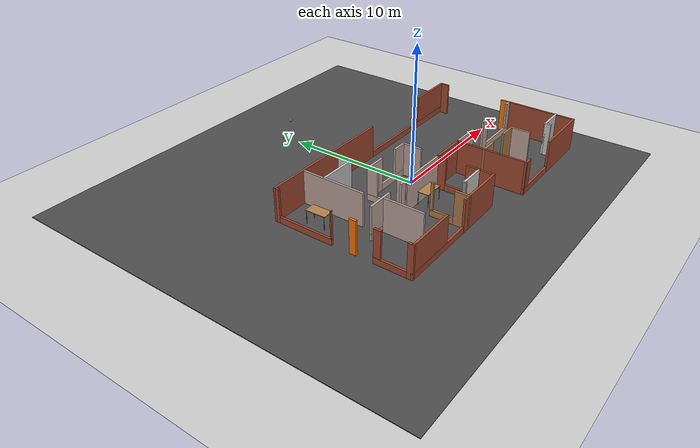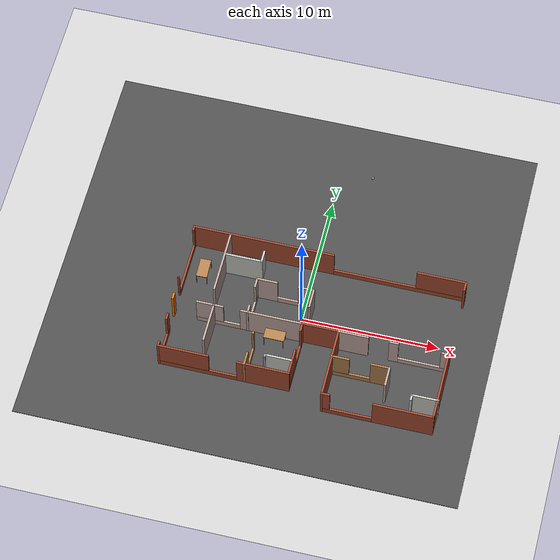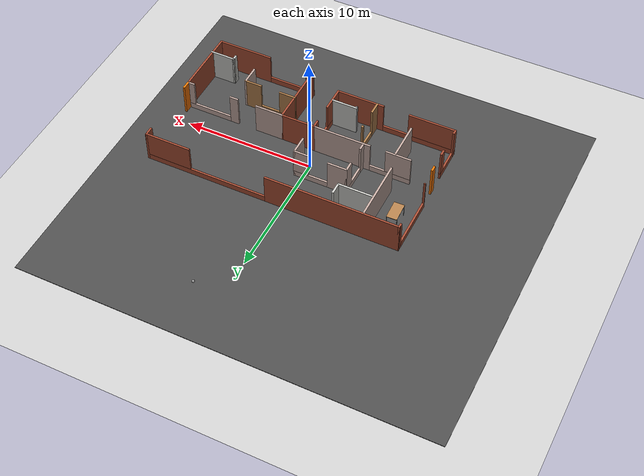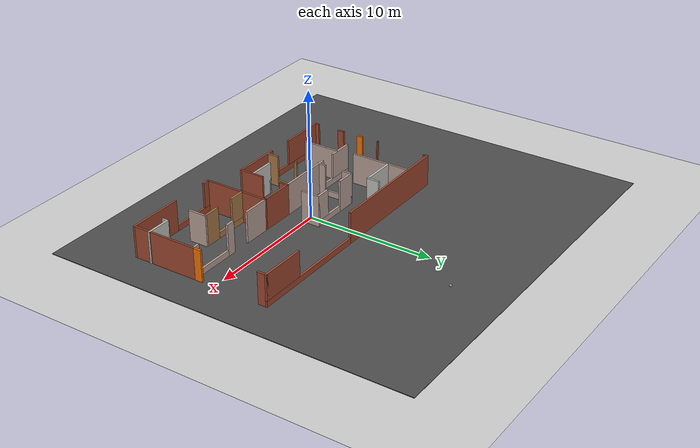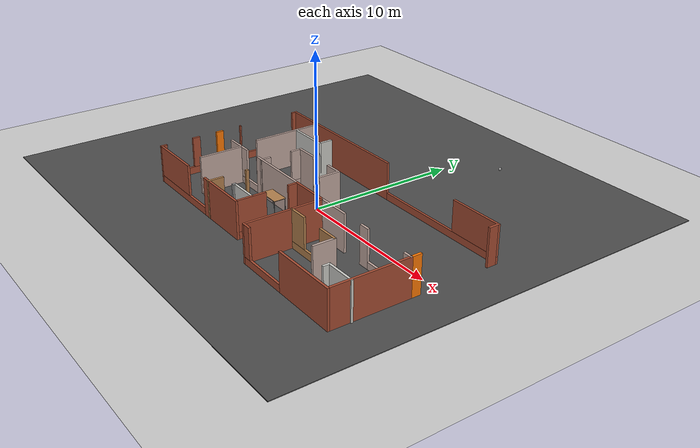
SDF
<sdf version="1.6">
 <world name="default">
  <model name="ground_plane">
   <static>1</static>
   <link name="link">
    <collision name="collision">
     <geometry><plane><normal>0 0 1</normal><size>100 100</size></plane></geometry>
     <surface>
      <contact><collide_bitmask>65535</collide_bitmask></contact>
      <friction><ode><mu>100</mu><mu2>50</mu2></ode></friction>
     </surface>
    </collision>
    <visual name="visual">
     <cast_shadows>0</cast_shadows>
     <geometry><plane><normal>0 0 1</normal><size>100 100</size></plane></geometry>
     <material>
      <script><uri>file://media/materials/scripts/gazebo.material</uri><name>Gazebo/Grey</name></script>
     </material>
    </visual>
   </link>
  </model>
  <model name="bksFloor">
   <pose>1.04636 -1.22829 -0.033581 0 -0 0</pose>
   <link name="Wall_1">
    <pose>-0.029228 5.55 0 0 -0 0</pose>
    <visual name="Wall_1_Visual_0">
     <pose>-4.80896 0 1.25 0 -0 0</pose>
     <geometry><box><size>10.3821 0.15 2.5</size></box></geometry>
     <material>
      <script><uri>file://media/materials/scripts/gazebo.material</uri><name>Gazebo/Bricks</name></script>
      <ambient>1 1 1 1</ambient>
     </material>
     <meta><layer>0</layer></meta>
    </visual>
    <collision name="Wall_1_Collision_0">
     <geometry><box><size>10.3821 0.15 2.5</size></box></geometry>
     <pose>-4.80896 0 1.25 0 -0 0</pose>
    </collision>
    <visual name="Wall_1_Visual_1">
     <pose>5.19104 0 0.25 0 -0 0</pose>
     <geometry><box><size>9.61793 0.15 0.5</size></box></geometry>
     <material>
      <script><uri>file://media/materials/scripts/gazebo.material</uri><name>Gazebo/Bricks</name></script>
      <ambient>1 1 1 1</ambient>
     </material>
     <meta><layer>0</layer></meta>
    </visual>
    <collision name="Wall_1_Collision_1">
     <geometry><box><size>9.61793 0.15 0.5</size></box></geometry>
     <pose>5.19104 0 0.25 0 -0 0</pose>
    </collision>
    <visual name="Wall_1_Visual_2">
     <pose>8.19104 0 1.5 0 -0 0</pose>
     <geometry><box><size>3.61793 0.15 2</size></box></geometry>
     <material>
      <script><uri>file://media/materials/scripts/gazebo.material</uri><name>Gazebo/Bricks</name></script>
      <ambient>1 1 1 1</ambient>
     </material>
     <meta><layer>0</layer></meta>
    </visual>
    <collision name="Wall_1_Collision_2">
     <geometry><box><size>3.61793 0.15 2</size></box></geometry>
     <pose>8.19104 0 1.5 0 -0 0</pose>
    </collision>
   </link>
   <link name="Wall_12">
    <pose>-5.22923 -4.55 0 0 -0 3.14159</pose>
    <visual name="Wall_12_Visual_0">
     <pose>-2.85664 0 1.25 0 -0 0</pose>
     <geometry><box><size>3.78673 0.15 2.5</size></box></geometry>
     <material>
      <script><uri>file://media/materials/scripts/gazebo.material</uri><name>Gazebo/Bricks</name></script>
      <ambient>1 1 1 1</ambient>
     </material>
     <meta><layer>0</layer></meta>
    </visual>
    <collision name="Wall_12_Collision_0">
     <geometry><box><size>3.78673 0.15 2.5</size></box></geometry>
     <pose>-2.85664 0 1.25 0 -0 0</pose>
    </collision>
    <visual name="Wall_12_Visual_1">
     <pose>1.89336 0 0.25 0 -0 0</pose>
     <geometry><box><size>5.71328 0.15 0.5</size></box></geometry>
     <material>
      <script><uri>file://media/materials/scripts/gazebo.material</uri><name>Gazebo/Bricks</name></script>
      <ambient>1 1 1 1</ambient>
     </material>
     <meta><layer>0</layer></meta>
    </visual>
    <collision name="Wall_12_Collision_1">
     <geometry><box><size>5.71328 0.15 0.5</size></box></geometry>
     <pose>1.89336 0 0.25 0 -0 0</pose>
    </collision>
    <visual name="Wall_12_Visual_2">
     <pose>2.89336 0 1.5 0 -0 0</pose>
     <geometry><box><size>3.71327 0.15 2</size></box></geometry>
     <material>
      <script><uri>file://media/materials/scripts/gazebo.material</uri><name>Gazebo/Bricks</name></script>
      <ambient>1 1 1 1</ambient>
     </material>
     <meta><layer>0</layer></meta>
    </visual>
    <collision name="Wall_12_Collision_2">
     <geometry><box><size>3.71327 0.15 2</size></box></geometry>
     <pose>2.89336 0 1.5 0 -0 0</pose>
    </collision>
   </link>
   <link name="Wall_21">
    <pose>4.08581 -2.49345 0 0 -0 3.14159</pose>
    <visual name="Wall_21_Visual_0">
     <pose>-1.4228 0 1.25 0 -0 0</pose>
     <geometry><box><size>1.40439 0.15 2.5</size></box></geometry>
     <material>
      <script><uri>file://media/materials/scripts/gazebo.material</uri><name>Gazebo/Wood</name></script>
      <ambient>1 1 1 1</ambient>
     </material>
     <meta><layer>0</layer></meta>
    </visual>
    <collision name="Wall_21_Collision_0">
     <geometry><box><size>1.40439 0.15 2.5</size></box></geometry>
     <pose>-1.4228 0 1.25 0 -0 0</pose>
    </collision>
    <visual name="Wall_21_Visual_1">
     <pose>0.702197 0 0.25 0 -0 0</pose>
     <geometry><box><size>2.84561 0.15 0.5</size></box></geometry>
     <material>
      <script><uri>file://media/materials/scripts/gazebo.material</uri><name>Gazebo/Wood</name></script>
      <ambient>1 1 1 1</ambient>
     </material>
     <meta><layer>0</layer></meta>
    </visual>
    <collision name="Wall_21_Collision_1">
     <geometry><box><size>2.84561 0.15 0.5</size></box></geometry>
     <pose>0.702197 0 0.25 0 -0 0</pose>
    </collision>
    <visual name="Wall_21_Visual_2">
     <pose>1.4522 0 1.5 0 -0 0</pose>
     <geometry><box><size>1.34561 0.15 2</size></box></geometry>
     <material>
      <script><uri>file://media/materials/scripts/gazebo.material</uri><name>Gazebo/Wood</name></script>
      <ambient>1 1 1 1</ambient>
     </material>
     <meta><layer>0</layer></meta>
    </visual>
    <collision name="Wall_21_Collision_2">
     <geometry><box><size>1.34561 0.15 2</size></box></geometry>
     <pose>1.4522 0 1.5 0 -0 0</pose>
    </collision>
   </link>
   <link name="Wall_24">
    <collision name="Wall_24_Collision">
     <geometry><box><size>2 0.15 2.5</size></box></geometry>
     <pose>0 0 1.25 0 -0 0</pose>
    </collision>
    <visual name="Wall_24_Visual">
     <pose>0 0 1.25 0 -0 0</pose>
     <geometry><box><size>2 0.15 2.5</size></box></geometry>
     <material>
      <script><uri>file://media/materials/scripts/gazebo.material</uri><name>Gazebo/CeilingTiled</name></script>
      <ambient>1 1 1 1</ambient>
     </material>
     <meta><layer>0</layer></meta>
    </visual>
    <pose>9.02923 -4.19025 0 0 -0 0</pose>
   </link>
   <link name="Wall_3">
    <pose>5.97077 -5.55 0 0 -0 3.14159</pose>
    <visual name="Wall_3_Visual_0">
     <pose>-1.828 0 1.25 0 -0 0</pose>
     <geometry><box><size>4.34399 0.15 2.5</size></box></geometry>
     <material>
      <script><uri>file://media/materials/scripts/gazebo.material</uri><name>Gazebo/Bricks</name></script>
      <ambient>1 1 1 1</ambient>
     </material>
     <meta><layer>0</layer></meta>
    </visual>
    <collision name="Wall_3_Collision_0">
     <geometry><box><size>4.34399 0.15 2.5</size></box></geometry>
     <pose>-1.828 0 1.25 0 -0 0</pose>
    </collision>
    <visual name="Wall_3_Visual_1">
     <pose>2.172 0 0.25 0 -0 0</pose>
     <geometry><box><size>3.656 0.15 0.5</size></box></geometry>
     <material>
      <script><uri>file://media/materials/scripts/gazebo.material</uri><name>Gazebo/Bricks</name></script>
      <ambient>1 1 1 1</ambient>
     </material>
     <meta><layer>0</layer></meta>
    </visual>
    <collision name="Wall_3_Collision_1">
     <geometry><box><size>3.656 0.15 0.5</size></box></geometry>
     <pose>2.172 0 0.25 0 -0 0</pose>
    </collision>
    <visual name="Wall_3_Visual_2">
     <pose>3.672 0 1.5 0 -0 0</pose>
     <geometry><box><size>0.656005 0.15 2</size></box></geometry>
     <material>
      <script><uri>file://media/materials/scripts/gazebo.material</uri><name>Gazebo/Bricks</name></script>
      <ambient>1 1 1 1</ambient>
     </material>
     <meta><layer>0</layer></meta>
    </visual>
    <collision name="Wall_3_Collision_2">
     <geometry><box><size>0.656005 0.15 2</size></box></geometry>
     <pose>3.672 0 1.5 0 -0 0</pose>
    </collision>
   </link>
   <link name="Wall_34">
    <collision name="Wall_34_Collision">
     <geometry><box><size>0.75 0.15 2.5</size></box></geometry>
     <pose>0 0 1.25 0 -0 0</pose>
    </collision>
    <visual name="Wall_34_Visual">
     <pose>0 0 1.25 0 -0 0</pose>
     <geometry><box><size>0.75 0.15 2.5</size></box></geometry>
     <material>
      <script><uri>file://media/materials/scripts/gazebo.material</uri><name>Gazebo/Bricks</name></script>
      <ambient>1 1 1 1</ambient>
     </material>
     <meta><layer>0</layer></meta>
    </visual>
    <pose>9.89577 5.25 0 0 0 -1.5708</pose>
   </link>
   <link name="Wall_36">
    <collision name="Wall_36_Collision">
     <geometry><box><size>0.75 0.15 2.5</size></box></geometry>
     <pose>0 0 1.25 0 -0 0</pose>
    </collision>
    <visual name="Wall_36_Visual">
     <pose>0 0 1.25 0 -0 0</pose>
     <geometry><box><size>0.75 0.15 2.5</size></box></geometry>
     <material>
      <script><uri>file://media/materials/scripts/gazebo.material</uri><name>Gazebo/Grey</name></script>
      <ambient>0.996078 0.47451 0.0196078 1</ambient>
     </material>
     <meta><layer>0</layer></meta>
    </visual>
    <pose>9.89577 -0.15 0 0 -0 1.5708</pose>
   </link>
   <link name="Wall_38">
    <collision name="Wall_38_Collision">
     <geometry><box><size>5.25 0.15 2.5</size></box></geometry>
     <pose>0 0 1.25 0 -0 0</pose>
    </collision>
    <visual name="Wall_38_Visual">
     <pose>0 0 1.25 0 -0 0</pose>
     <geometry><box><size>5.25 0.15 2.5</size></box></geometry>
     <material>
      <script><uri>file://media/materials/scripts/gazebo.material</uri><name>Gazebo/Bricks</name></script>
      <ambient>1 1 1 1</ambient>
     </material>
     <meta><layer>0</layer></meta>
    </visual>
    <pose>9.89577 -3 0 0 0 -1.5708</pose>
   </link>
   <link name="Wall_4">
    <collision name="Wall_4_Collision">
     <geometry><box><size>5.25 0.15 2.5</size></box></geometry>
     <pose>0 0 1.25 0 -0 0</pose>
    </collision>
    <visual name="Wall_4_Visual">
     <pose>0 0 1.25 0 -0 0</pose>
     <geometry><box><size>5.25 0.15 2.5</size></box></geometry>
     <material>
      <script><uri>file://media/materials/scripts/gazebo.material</uri><name>Gazebo/Bricks</name></script>
      <ambient>1 1 1 1</ambient>
     </material>
     <meta><layer>0</layer></meta>
    </visual>
    <pose>2.04577 -3 0 0 -0 1.5708</pose>
   </link>
   <link name="Wall_40">
    <collision name="Wall_40_Collision">
     <geometry><box><size>0.5 0.15 2.5</size></box></geometry>
     <pose>0 0 1.25 0 -0 0</pose>
    </collision>
    <visual name="Wall_40_Visual">
     <pose>0 0 1.25 0 -0 0</pose>
     <geometry><box><size>0.5 0.15 2.5</size></box></geometry>
     <material>
      <script><uri>file://media/materials/scripts/gazebo.material</uri><name>Gazebo/CeilingTiled</name></script>
      <ambient>1 1 1 1</ambient>
     </material>
     <meta><layer>0</layer></meta>
    </visual>
    <pose>8.10423 -4.36525 0 0 0 -1.5708</pose>
   </link>
   <link name="Wall_42">
    <collision name="Wall_42_Collision">
     <geometry><box><size>1.5 0.15 2.5</size></box></geometry>
     <pose>0 0 1.25 0 -0 0</pose>
    </collision>
    <visual name="Wall_42_Visual">
     <pose>0 0 1.25 0 -0 0</pose>
     <geometry><box><size>1.5 0.15 2.5</size></box></geometry>
     <material>
      <script><uri>file://media/materials/scripts/gazebo.material</uri><name>Gazebo/Grey</name></script>
      <ambient>0.760784 0.662745 0.627451 1</ambient>
     </material>
     <meta><layer>0</layer></meta>
    </visual>
    <pose>6.13581 -3.16845 0 0 0 -1.5708</pose>
   </link>
   <link name="Wall_44">
    <pose>-9.95423 3.375 0 0 0 -1.5708</pose>
    <visual name="Wall_44_Visual_0">
     <pose>-2.04593 0 1.25 0 -0 0</pose>
     <geometry><box><size>0.408134 0.15 2.5</size></box></geometry>
     <material>
      <script><uri>file://media/materials/scripts/gazebo.material</uri><name>Gazebo/Bricks</name></script>
      <ambient>1 1 1 1</ambient>
     </material>
     <meta><layer>0</layer></meta>
    </visual>
    <collision name="Wall_44_Collision_0">
     <geometry><box><size>0.408134 0.15 2.5</size></box></geometry>
     <pose>-2.04593 0 1.25 0 -0 0</pose>
    </collision>
    <visual name="Wall_44_Visual_1">
     <pose>0.204067 0 0.25 0 -0 0</pose>
     <geometry><box><size>4.09187 0.15 0.5</size></box></geometry>
     <material>
      <script><uri>file://media/materials/scripts/gazebo.material</uri><name>Gazebo/Bricks</name></script>
      <ambient>1 1 1 1</ambient>
     </material>
     <meta><layer>0</layer></meta>
    </visual>
    <collision name="Wall_44_Collision_1">
     <geometry><box><size>4.09187 0.15 0.5</size></box></geometry>
     <pose>0.204067 0 0.25 0 -0 0</pose>
    </collision>
    <visual name="Wall_44_Visual_2">
     <pose>2.20407 0 1.5 0 -0 0</pose>
     <geometry><box><size>0.091866 0.15 2</size></box></geometry>
     <material>
      <script><uri>file://media/materials/scripts/gazebo.material</uri><name>Gazebo/Bricks</name></script>
      <ambient>1 1 1 1</ambient>
     </material>
     <meta><layer>0</layer></meta>
    </visual>
    <collision name="Wall_44_Collision_2">
     <geometry><box><size>0.091866 0.15 2</size></box></geometry>
     <pose>2.20407 0 1.5 0 -0 0</pose>
    </collision>
   </link>
   <link name="Wall_46">
    <pose>-9.90423 -3.25 0 0 -0 1.5708</pose>
    <visual name="Wall_46_Visual_0">
     <pose>-1.1581 0 1.25 0 -0 0</pose>
     <geometry><box><size>0.433795 0.15 2.5</size></box></geometry>
     <material>
      <script><uri>file://media/materials/scripts/gazebo.material</uri><name>Gazebo/Bricks</name></script>
      <ambient>1 1 1 1</ambient>
     </material>
     <meta><layer>0</layer></meta>
    </visual>
    <collision name="Wall_46_Collision_0">
     <geometry><box><size>0.433795 0.15 2.5</size></box></geometry>
     <pose>-1.1581 0 1.25 0 -0 0</pose>
    </collision>
    <visual name="Wall_46_Visual_1">
     <pose>0.216898 0 0.25 0 -0 0</pose>
     <geometry><box><size>2.31621 0.15 0.5</size></box></geometry>
     <material>
      <script><uri>file://media/materials/scripts/gazebo.material</uri><name>Gazebo/Bricks</name></script>
      <ambient>1 1 1 1</ambient>
     </material>
     <meta><layer>0</layer></meta>
    </visual>
    <collision name="Wall_46_Collision_1">
     <geometry><box><size>2.31621 0.15 0.5</size></box></geometry>
     <pose>0.216898 0 0.25 0 -0 0</pose>
    </collision>
    <visual name="Wall_46_Visual_2">
     <pose>1.1169 0 1.5 0 -0 0</pose>
     <geometry><box><size>0.516205 0.15 2</size></box></geometry>
     <material>
      <script><uri>file://media/materials/scripts/gazebo.material</uri><name>Gazebo/Bricks</name></script>
      <ambient>1 1 1 1</ambient>
     </material>
     <meta><layer>0</layer></meta>
    </visual>
    <collision name="Wall_46_Collision_2">
     <geometry><box><size>0.516205 0.15 2</size></box></geometry>
     <pose>1.1169 0 1.5 0 -0 0</pose>
    </collision>
   </link>
   <link name="Wall_48">
    <collision name="Wall_48_Collision">
     <geometry><box><size>3 0.15 2.5</size></box></geometry>
     <pose>0 0 1.25 0 -0 0</pose>
    </collision>
    <visual name="Wall_48_Visual">
     <pose>0 0 1.25 0 -0 0</pose>
     <geometry><box><size>3 0.15 2.5</size></box></geometry>
     <material>
      <script><uri>file://media/materials/scripts/gazebo.material</uri><name>Gazebo/Grey</name></script>
      <ambient>0.760784 0.662745 0.627451 1</ambient>
     </material>
     <meta><layer>0</layer></meta>
    </visual>
    <pose>-6.95794 -1.90503 0 0 0 -1.5708</pose>
   </link>
   <link name="Wall_5">
    <collision name="Wall_5_Collision">
     <geometry><box><size>2.75 0.15 2.5</size></box></geometry>
     <pose>0 0 1.25 0 -0 0</pose>
    </collision>
    <visual name="Wall_5_Visual">
     <pose>0 0 1.25 0 -0 0</pose>
     <geometry><box><size>2.75 0.15 2.5</size></box></geometry>
     <material>
      <script><uri>file://media/materials/scripts/gazebo.material</uri><name>Gazebo/Bricks</name></script>
      <ambient>1 1 1 1</ambient>
     </material>
     <meta><layer>0</layer></meta>
    </visual>
    <pose>0.745772 -0.45 0 0 -0 3.14159</pose>
   </link>
   <link name="Wall_50">
    <pose>-3.72149 -3.26076 0 0 -0 1.5708</pose>
    <visual name="Wall_50_Visual_0">
     <pose>-0.849058 0 1.25 0 -0 0</pose>
     <geometry><box><size>1.05188 0.15 2.5</size></box></geometry>
     <material>
      <script><uri>file://media/materials/scripts/gazebo.material</uri><name>Gazebo/Wood</name></script>
      <ambient>0.760784 0.662745 0.627451 1</ambient>
     </material>
     <meta><layer>0</layer></meta>
    </visual>
    <collision name="Wall_50_Collision_0">
     <geometry><box><size>1.05188 0.15 2.5</size></box></geometry>
     <pose>-0.849058 0 1.25 0 -0 0</pose>
    </collision>
    <visual name="Wall_50_Visual_1">
     <pose>0.525942 0 0.25 0 -0 0</pose>
     <geometry><box><size>1.69812 0.15 0.5</size></box></geometry>
     <material>
      <script><uri>file://media/materials/scripts/gazebo.material</uri><name>Gazebo/Wood</name></script>
      <ambient>0.760784 0.662745 0.627451 1</ambient>
     </material>
     <meta><layer>0</layer></meta>
    </visual>
    <collision name="Wall_50_Collision_1">
     <geometry><box><size>1.69812 0.15 0.5</size></box></geometry>
     <pose>0.525942 0 0.25 0 -0 0</pose>
    </collision>
    <visual name="Wall_50_Visual_2">
     <pose>1.27594 0 1.5 0 -0 0</pose>
     <geometry><box><size>0.198117 0.15 2</size></box></geometry>
     <material>
      <script><uri>file://media/materials/scripts/gazebo.material</uri><name>Gazebo/Wood</name></script>
      <ambient>0.760784 0.662745 0.627451 1</ambient>
     </material>
     <meta><layer>0</layer></meta>
    </visual>
    <collision name="Wall_50_Collision_2">
     <geometry><box><size>0.198117 0.15 2</size></box></geometry>
     <pose>1.27594 0 1.5 0 -0 0</pose>
    </collision>
   </link>
   <link name="Wall_54">
    <pose>-4.35423 -0.45 0 0 -0 3.14159</pose>
    <visual name="Wall_54_Visual_0">
     <pose>-1.58815 0 1.25 0 -0 0</pose>
     <geometry><box><size>4.57369 0.15 2.5</size></box></geometry>
     <material>
      <script><uri>file://media/materials/scripts/gazebo.material</uri><name>Gazebo/Grey</name></script>
      <ambient>0.760784 0.662745 0.627451 1</ambient>
     </material>
     <meta><layer>0</layer></meta>
    </visual>
    <collision name="Wall_54_Collision_0">
     <geometry><box><size>4.57369 0.15 2.5</size></box></geometry>
     <pose>-1.58815 0 1.25 0 -0 0</pose>
    </collision>
    <visual name="Wall_54_Visual_1">
     <pose>2.28685 0 0.25 0 -0 0</pose>
     <geometry><box><size>3.17631 0.15 0.5</size></box></geometry>
     <material>
      <script><uri>file://media/materials/scripts/gazebo.material</uri><name>Gazebo/Grey</name></script>
      <ambient>0.760784 0.662745 0.627451 1</ambient>
     </material>
     <meta><layer>0</layer></meta>
    </visual>
    <collision name="Wall_54_Collision_1">
     <geometry><box><size>3.17631 0.15 0.5</size></box></geometry>
     <pose>2.28685 0 0.25 0 -0 0</pose>
    </collision>
    <visual name="Wall_54_Visual_2">
     <pose>2.88685 0 1.5 0 -0 0</pose>
     <geometry><box><size>1.97631 0.15 2</size></box></geometry>
     <material>
      <script><uri>file://media/materials/scripts/gazebo.material</uri><name>Gazebo/Grey</name></script>
      <ambient>0.760784 0.662745 0.627451 1</ambient>
     </material>
     <meta><layer>0</layer></meta>
    </visual>
    <collision name="Wall_54_Collision_2">
     <geometry><box><size>1.97631 0.15 2</size></box></geometry>
     <pose>2.88685 0 1.5 0 -0 0</pose>
    </collision>
   </link>
   <link name="Wall_56">
    <collision name="Wall_56_Collision">
     <geometry><box><size>0.5 0.15 2.5</size></box></geometry>
     <pose>0 0 1.25 0 -0 0</pose>
    </collision>
    <visual name="Wall_56_Visual">
     <pose>0 0 1.25 0 -0 0</pose>
     <geometry><box><size>0.5 0.15 2.5</size></box></geometry>
     <material>
      <script><uri>file://media/materials/scripts/gazebo.material</uri><name>Gazebo/Grey</name></script>
      <ambient>0.996078 0.47451 0.0196078 1</ambient>
     </material>
     <meta><layer>0</layer></meta>
    </visual>
    <pose>-9.91295 -0.410564 0 0 -0 1.5708</pose>
   </link>
   <link name="Wall_58">
    <collision name="Wall_58_Collision">
     <geometry><box><size>2 0.15 2.5</size></box></geometry>
     <pose>0 0 1.25 0 -0 0</pose>
    </collision>
    <visual name="Wall_58_Visual">
     <pose>0 0 1.25 0 -0 0</pose>
     <geometry><box><size>2 0.15 2.5</size></box></geometry>
     <material>
      <script><uri>file://media/materials/scripts/gazebo.material</uri><name>Gazebo/CeilingTiled</name></script>
      <ambient>0.760784 0.662745 0.627451 1</ambient>
     </material>
     <meta><layer>0</layer></meta>
    </visual>
    <pose>-1.56523 -3.5054 0 0 -0 0</pose>
   </link>
   <link name="Wall_6">
    <pose>-0.554228 -2.5 0 0 0 -1.5708</pose>
    <visual name="Wall_6_Visual_0">
     <pose>-1.76306 0 1.25 0 -0 0</pose>
     <geometry><box><size>0.723876 0.15 2.5</size></box></geometry>
     <material>
      <script><uri>file://media/materials/scripts/gazebo.material</uri><name>Gazebo/Bricks</name></script>
      <ambient>1 1 1 1</ambient>
     </material>
     <meta><layer>0</layer></meta>
    </visual>
    <collision name="Wall_6_Collision_0">
     <geometry><box><size>0.723876 0.15 2.5</size></box></geometry>
     <pose>-1.76306 0 1.25 0 -0 0</pose>
    </collision>
    <visual name="Wall_6_Visual_1">
     <pose>0.361938 0 0.25 0 -0 0</pose>
     <geometry><box><size>3.52612 0.15 0.5</size></box></geometry>
     <material>
      <script><uri>file://media/materials/scripts/gazebo.material</uri><name>Gazebo/Bricks</name></script>
      <ambient>1 1 1 1</ambient>
     </material>
     <meta><layer>0</layer></meta>
    </visual>
    <collision name="Wall_6_Collision_1">
     <geometry><box><size>3.52612 0.15 0.5</size></box></geometry>
     <pose>0.361938 0 0.25 0 -0 0</pose>
    </collision>
    <visual name="Wall_6_Visual_2">
     <pose>1.11194 0 1.5 0 -0 0</pose>
     <geometry><box><size>2.02612 0.15 2</size></box></geometry>
     <material>
      <script><uri>file://media/materials/scripts/gazebo.material</uri><name>Gazebo/Bricks</name></script>
      <ambient>1 1 1 1</ambient>
     </material>
     <meta><layer>0</layer></meta>
    </visual>
    <collision name="Wall_6_Collision_2">
     <geometry><box><size>2.02612 0.15 2</size></box></geometry>
     <pose>1.11194 0 1.5 0 -0 0</pose>
    </collision>
   </link>
   <link name="Wall_60">
    <collision name="Wall_60_Collision">
     <geometry><box><size>0.25 0.15 2.5</size></box></geometry>
     <pose>0 0 1.25 0 -0 0</pose>
    </collision>
    <visual name="Wall_60_Visual">
     <pose>0 0 1.25 0 -0 0</pose>
     <geometry><box><size>0.25 0.15 2.5</size></box></geometry>
     <material>
      <script><uri>file://media/materials/scripts/gazebo.material</uri><name>Gazebo/Grey</name></script>
      <ambient>1 1 1 1</ambient>
     </material>
     <meta><layer>0</layer></meta>
    </visual>
    <pose>-2.49024 -3.5554 0 0 0 -1.5708</pose>
   </link>
   <link name="Wall_62">
    <collision name="Wall_62_Collision">
     <geometry><box><size>4.75 0.15 2.5</size></box></geometry>
     <pose>0 0 1.25 0 -0 0</pose>
    </collision>
    <visual name="Wall_62_Visual">
     <pose>0 0 1.25 0 -0 0</pose>
     <geometry><box><size>4.75 0.15 2.5</size></box></geometry>
     <material>
      <script><uri>file://media/materials/scripts/gazebo.material</uri><name>Gazebo/Grey</name></script>
      <ambient>0.760784 0.662745 0.627451 1</ambient>
     </material>
     <meta><layer>0</layer></meta>
    </visual>
    <pose>-7.26332 3.16139 0 0 0 -1.5708</pose>
   </link>
   <link name="Wall_64">
    <collision name="Wall_64_Collision">
     <geometry><box><size>2.25 0.15 2.5</size></box></geometry>
     <pose>0 0 1.25 0 -0 0</pose>
    </collision>
    <visual name="Wall_64_Visual">
     <pose>0 0 1.25 0 -0 0</pose>
     <geometry><box><size>2.25 0.15 2.5</size></box></geometry>
     <material>
      <script><uri>file://media/materials/scripts/gazebo.material</uri><name>Gazebo/Grey</name></script>
      <ambient>0.760784 0.662745 0.627451 1</ambient>
     </material>
     <meta><layer>0</layer></meta>
    </visual>
    <pose>3.09577 -0.45 0 0 -0 0</pose>
   </link>
   <link name="Wall_66">
    <pose>7.82077 -0.45 0 0 -0 0</pose>
    <visual name="Wall_66_Visual_0">
     <pose>-1.80752 0 1.25 0 -0 0</pose>
     <geometry><box><size>0.684954 0.15 2.5</size></box></geometry>
     <material>
      <script><uri>file://media/materials/scripts/gazebo.material</uri><name>Gazebo/Grey</name></script>
      <ambient>0.760784 0.662745 0.627451 1</ambient>
     </material>
     <meta><layer>0</layer></meta>
    </visual>
    <collision name="Wall_66_Collision_0">
     <geometry><box><size>0.684954 0.15 2.5</size></box></geometry>
     <pose>-1.80752 0 1.25 0 -0 0</pose>
    </collision>
    <visual name="Wall_66_Visual_1">
     <pose>0.342477 0 0.25 0 -0 0</pose>
     <geometry><box><size>3.61505 0.15 0.5</size></box></geometry>
     <material>
      <script><uri>file://media/materials/scripts/gazebo.material</uri><name>Gazebo/Grey</name></script>
      <ambient>0.760784 0.662745 0.627451 1</ambient>
     </material>
     <meta><layer>0</layer></meta>
    </visual>
    <collision name="Wall_66_Collision_1">
     <geometry><box><size>3.61505 0.15 0.5</size></box></geometry>
     <pose>0.342477 0 0.25 0 -0 0</pose>
    </collision>
    <visual name="Wall_66_Visual_2">
     <pose>1.84248 0 1.5 0 -0 0</pose>
     <geometry><box><size>0.615046 0.15 2</size></box></geometry>
     <material>
      <script><uri>file://media/materials/scripts/gazebo.material</uri><name>Gazebo/Grey</name></script>
      <ambient>0.760784 0.662745 0.627451 1</ambient>
     </material>
     <meta><layer>0</layer></meta>
    </visual>
    <collision name="Wall_66_Collision_2">
     <geometry><box><size>0.615046 0.15 2</size></box></geometry>
     <pose>1.84248 0 1.5 0 -0 0</pose>
    </collision>
   </link>
   <link name="Wall_68">
    <collision name="Wall_68_Collision">
     <geometry><box><size>2.75 0.15 2.5</size></box></geometry>
     <pose>0 0 1.25 0 -0 0</pose>
    </collision>
    <visual name="Wall_68_Visual">
     <pose>0 0 1.25 0 -0 0</pose>
     <geometry><box><size>2.75 0.15 2.5</size></box></geometry>
     <material>
      <script><uri>file://media/materials/scripts/gazebo.material</uri><name>Gazebo/CeilingTiled</name></script>
      <ambient>0.760784 0.662745 0.627451 1</ambient>
     </material>
     <meta><layer>0</layer></meta>
    </visual>
    <pose>-5.87155 3.8401 0 0 -0 0</pose>
   </link>
   <link name="Wall_69">
    <collision name="Wall_69_Collision">
     <geometry><box><size>1 0.15 2.5</size></box></geometry>
     <pose>0 0 1.25 0 -0 0</pose>
    </collision>
    <visual name="Wall_69_Visual">
     <pose>0 0 1.25 0 -0 0</pose>
     <geometry><box><size>1 0.15 2.5</size></box></geometry>
     <material>
      <script><uri>file://media/materials/scripts/gazebo.material</uri><name>Gazebo/CeilingTiled</name></script>
      <ambient>0.760784 0.662745 0.627451 1</ambient>
     </material>
     <meta><layer>0</layer></meta>
    </visual>
    <pose>-4.57155 4.26511 0 0 -0 1.5708</pose>
   </link>
   <link name="Wall_75">
    <pose>-4.5102 0.951883 0 0 -0 1.5708</pose>
    <visual name="Wall_75_Visual_0">
     <pose>-1.15341 0 1.25 0 -0 0</pose>
     <geometry><box><size>0.693186 0.15 2.5</size></box></geometry>
     <material>
      <script><uri>file://media/materials/scripts/gazebo.material</uri><name>Gazebo/Grey</name></script>
      <ambient>0.760784 0.662745 0.627451 1</ambient>
     </material>
     <meta><layer>0</layer></meta>
    </visual>
    <collision name="Wall_75_Collision_0">
     <geometry><box><size>0.693186 0.15 2.5</size></box></geometry>
     <pose>-1.15341 0 1.25 0 -0 0</pose>
    </collision>
    <visual name="Wall_75_Visual_1">
     <pose>0.346593 0 0.25 0 -0 0</pose>
     <geometry><box><size>2.30681 0.15 0.5</size></box></geometry>
     <material>
      <script><uri>file://media/materials/scripts/gazebo.material</uri><name>Gazebo/Grey</name></script>
      <ambient>0.760784 0.662745 0.627451 1</ambient>
     </material>
     <meta><layer>0</layer></meta>
    </visual>
    <collision name="Wall_75_Collision_1">
     <geometry><box><size>2.30681 0.15 0.5</size></box></geometry>
     <pose>0.346593 0 0.25 0 -0 0</pose>
    </collision>
    <visual name="Wall_75_Visual_2">
     <pose>1.09659 0 1.5 0 -0 0</pose>
     <geometry><box><size>0.806814 0.15 2</size></box></geometry>
     <material>
      <script><uri>file://media/materials/scripts/gazebo.material</uri><name>Gazebo/Grey</name></script>
      <ambient>0.760784 0.662745 0.627451 1</ambient>
     </material>
     <meta><layer>0</layer></meta>
    </visual>
    <collision name="Wall_75_Collision_2">
     <geometry><box><size>0.806814 0.15 2</size></box></geometry>
     <pose>1.09659 0 1.5 0 -0 0</pose>
    </collision>
   </link>
   <link name="Wall_77">
    <pose>-2.4602 2.37688 0 0 -0 0</pose>
    <visual name="Wall_77_Visual_0">
     <pose>-1.34528 0 1.25 0 -0 0</pose>
     <geometry><box><size>1.55944 0.15 2.5</size></box></geometry>
     <material>
      <script><uri>file://media/materials/scripts/gazebo.material</uri><name>Gazebo/Grey</name></script>
      <ambient>0.760784 0.662745 0.627451 1</ambient>
     </material>
     <meta><layer>0</layer></meta>
    </visual>
    <collision name="Wall_77_Collision_0">
     <geometry><box><size>1.55944 0.15 2.5</size></box></geometry>
     <pose>-1.34528 0 1.25 0 -0 0</pose>
    </collision>
    <visual name="Wall_77_Visual_1">
     <pose>0.77972 0 0.25 0 -0 0</pose>
     <geometry><box><size>2.69056 0.15 0.5</size></box></geometry>
     <material>
      <script><uri>file://media/materials/scripts/gazebo.material</uri><name>Gazebo/Grey</name></script>
      <ambient>0.760784 0.662745 0.627451 1</ambient>
     </material>
     <meta><layer>0</layer></meta>
    </visual>
    <collision name="Wall_77_Collision_1">
     <geometry><box><size>2.69056 0.15 0.5</size></box></geometry>
     <pose>0.77972 0 0.25 0 -0 0</pose>
    </collision>
    <visual name="Wall_77_Visual_2">
     <pose>1.52972 0 1.5 0 -0 0</pose>
     <geometry><box><size>1.19056 0.15 2</size></box></geometry>
     <material>
      <script><uri>file://media/materials/scripts/gazebo.material</uri><name>Gazebo/Grey</name></script>
      <ambient>0.760784 0.662745 0.627451 1</ambient>
     </material>
     <meta><layer>0</layer></meta>
    </visual>
    <collision name="Wall_77_Collision_2">
     <geometry><box><size>1.19056 0.15 2</size></box></geometry>
     <pose>1.52972 0 1.5 0 -0 0</pose>
    </collision>
   </link>
   <link name="Wall_78">
    <collision name="Wall_78_Collision">
     <geometry><box><size>1.5 0.15 2.5</size></box></geometry>
     <pose>0 0 1.25 0 -0 0</pose>
    </collision>
    <visual name="Wall_78_Visual">
     <pose>0 0 1.25 0 -0 0</pose>
     <geometry><box><size>1.5 0.15 2.5</size></box></geometry>
     <material>
      <script><uri>file://media/materials/scripts/gazebo.material</uri><name>Gazebo/Grey</name></script>
      <ambient>0.760784 0.662745 0.627451 1</ambient>
     </material>
     <meta><layer>0</layer></meta>
    </visual>
    <pose>-0.410197 1.70188 0 0 0 -1.5708</pose>
   </link>
   <static>1</static>
  </model>
  <model name="asphalt_plane">
   <static>1</static>
   <link name="link">
    <collision name="collision"><geometry><box><size>31.6298 29.1828 0.1</size></box></geometry></collision>
    <visual name="visual">
     <cast_shadows>0</cast_shadows>
     <geometry><box><size>31.6298 29.1828 0.1</size></box></geometry>
     <material>
      <script>
       <uri>model://asphalt_plane/materials/scripts</uri>
       <uri>model://asphalt_plane/materials/textures</uri>
       <name>vrc/asphalt</name>
      </script>
     </material>
    </visual>
   </link>
   <pose>-1.96873 2.62614 -0.048007 0 -0 0</pose>
  </model>
  <model name="table">
   <static>1</static>
   <link name="link">
    <collision name="surface">
     <pose>0 0 1 0 -0 0</pose>
     <geometry><box><size>1.5 0.8 0.03</size></box></geometry>
     <surface><friction><ode><mu>0.6</mu><mu2>0.6</mu2></ode></friction></surface>
    </collision>
    <visual name="visual1">
     <pose>0 0 1 0 -0 0</pose>
     <geometry><box><size>1.5 0.8 0.03</size></box></geometry>
     <material>
      <script><uri>file://media/materials/scripts/gazebo.material</uri><name>Gazebo/Wood</name></script>
     </material>
    </visual>
    <collision name="front_left_leg">
     <pose>0.68 0.38 0.5 0 -0 0</pose>
     <geometry><cylinder><radius>0.02</radius><length>1</length></cylinder></geometry>
    </collision>
    <visual name="front_left_leg">
     <pose>0.68 0.38 0.5 0 -0 0</pose>
     <geometry><cylinder><radius>0.02</radius><length>1</length></cylinder></geometry>
     <material>
      <script><uri>file://media/materials/scripts/gazebo.material</uri><name>Gazebo/Grey</name></script>
     </material>
    </visual>
    <collision name="front_right_leg">
     <pose>0.68 -0.38 0.5 0 -0 0</pose>
     <geometry><cylinder><radius>0.02</radius><length>1</length></cylinder></geometry>
    </collision>
    <visual name="front_right_leg">
     <pose>0.68 -0.38 0.5 0 -0 0</pose>
     <geometry><cylinder><radius>0.02</radius><length>1</length></cylinder></geometry>
     <material>
      <script><uri>file://media/materials/scripts/gazebo.material</uri><name>Gazebo/Grey</name></script>
     </material>
    </visual>
    <collision name="back_right_leg">
     <pose>-0.68 -0.38 0.5 0 -0 0</pose>
     <geometry><cylinder><radius>0.02</radius><length>1</length></cylinder></geometry>
    </collision>
    <visual name="back_right_leg">
     <pose>-0.68 -0.38 0.5 0 -0 0</pose>
     <geometry><cylinder><radius>0.02</radius><length>1</length></cylinder></geometry>
     <material>
      <script><uri>file://media/materials/scripts/gazebo.material</uri><name>Gazebo/Grey</name></script>
     </material>
    </visual>
    <collision name="back_left_leg">
     <pose>-0.68 0.38 0.5 0 -0 0</pose>
     <geometry><cylinder><radius>0.02</radius><length>1</length></cylinder></geometry>
    </collision>
    <visual name="back_left_leg">
     <pose>-0.68 0.38 0.5 0 -0 0</pose>
     <geometry><cylinder><radius>0.02</radius><length>1</length></cylinder></geometry>
     <material>
      <script><uri>file://media/materials/scripts/gazebo.material</uri><name>Gazebo/Grey</name></script>
     </material>
    </visual>
   </link>
   <pose>-1.37524 -2.19939 0 0 -0 0</pose>
  </model>
  <model name="table_1">
   <static>1</static>
   <link name="link">
    <collision name="surface">
     <pose>0 0 1 0 -0 0</pose>
     <geometry><box><size>1.5 0.8 0.03</size></box></geometry>
     <surface><friction><ode><mu>0.6</mu><mu2>0.6</mu2></ode></friction></surface>
    </collision>
    <visual name="visual1">
     <pose>0 0 1 0 -0 0</pose>
     <geometry><box><size>1.5 0.8 0.03</size></box></geometry>
     <material>
      <script><uri>file://media/materials/scripts/gazebo.material</uri><name>Gazebo/Wood</name></script>
     </material>
    </visual>
    <collision name="front_left_leg">
     <pose>0.68 0.38 0.5 0 -0 0</pose>
     <geometry><cylinder><radius>0.02</radius><length>1</length></cylinder></geometry>
    </collision>
    <visual name="front_left_leg">
     <pose>0.68 0.38 0.5 0 -0 0</pose>
     <geometry><cylinder><radius>0.02</radius><length>1</length></cylinder></geometry>
     <material>
      <script><uri>file://media/materials/scripts/gazebo.material</uri><name>Gazebo/Grey</name></script>
     </material>
    </visual>
    <collision name="front_right_leg">
     <pose>0.68 -0.38 0.5 0 -0 0</pose>
     <geometry><cylinder><radius>0.02</radius><length>1</length></cylinder></geometry>
    </collision>
    <visual name="front_right_leg">
     <pose>0.68 -0.38 0.5 0 -0 0</pose>
     <geometry><cylinder><radius>0.02</radius><length>1</length></cylinder></geometry>
     <material>
      <script><uri>file://media/materials/scripts/gazebo.material</uri><name>Gazebo/Grey</name></script>
     </material>
    </visual>
    <collision name="back_right_leg">
     <pose>-0.68 -0.38 0.5 0 -0 0</pose>
     <geometry><cylinder><radius>0.02</radius><length>1</length></cylinder></geometry>
    </collision>
    <visual name="back_right_leg">
     <pose>-0.68 -0.38 0.5 0 -0 0</pose>
     <geometry><cylinder><radius>0.02</radius><length>1</length></cylinder></geometry>
     <material>
      <script><uri>file://media/materials/scripts/gazebo.material</uri><name>Gazebo/Grey</name></script>
     </material>
    </visual>
    <collision name="back_left_leg">
     <pose>-0.68 0.38 0.5 0 -0 0</pose>
     <geometry><cylinder><radius>0.02</radius><length>1</length></cylinder></geometry>
    </collision>
    <visual name="back_left_leg">
     <pose>-0.68 0.38 0.5 0 -0 0</pose>
     <geometry><cylinder><radius>0.02</radius><length>1</length></cylinder></geometry>
     <material>
      <script><uri>file://media/materials/scripts/gazebo.material</uri><name>Gazebo/Grey</name></script>
     </material>
    </visual>
   </link>
   <pose>-7.6375 1.94761 0 0 0 -1.53798</pose>
  </model>
  <model name="my_ball">
   <link name="link_0">
    <pose>-0 3 0 0 -0 0</pose>
    <inertial>
     <mass>1</mass>
     <inertia><ixx>0.1</ixx><ixy>0</ixy><ixz>0</ixz><iyy>0.1</iyy><iyz>0</iyz><izz>0.1</izz></inertia>
    </inertial>
    <visual name="visual">
     <geometry><sphere><radius>0.1</radius></sphere></geometry>
     <material>
      <lighting>1</lighting>
      <script><uri>file://media/materials/scripts/gazebo.material</uri><name>Gazebo/Grey</name></script>
      <shader type="pixel"><normal_map>__default__</normal_map></shader>
      <ambient>1 1 1 1</ambient>
      <diffuse>1 1 1 1</diffuse>
      <specular>1 1 1 1</specular>
      <emissive>1 1 1 1</emissive>
     </material>
    </visual>
    <collision name="collision">
     <geometry><sphere><radius>0.1</radius></sphere></geometry>
     <surface>
      <friction>
       <ode><mu>1</mu><mu2>1</mu2><fdir1>0 0 0</fdir1><slip1>0</slip1><slip2>0</slip2></ode>
       <torsional>
        <coefficient>1</coefficient>
        <patch_radius>0</patch_radius>
        <surface_radius>0</surface_radius>
        <use_patch_radius>1</use_patch_radius>
        <ode><slip>0</slip></ode>
       </torsional>
      </friction>
      <bounce><restitution_coefficient>0</restitution_coefficient><threshold>1e+06</threshold></bounce>
      <contact>
       <collide_without_contact>0</collide_without_contact>
       <collide_without_contact_bitmask>1</collide_without_contact_bitmask>
       <collide_bitmask>1</collide_bitmask>
       <ode>
        <soft_cfm>0</soft_cfm>
        <soft_erp>0.2</soft_erp>
        <kp>1e+13</kp>
        <kd>1</kd>
        <max_vel>0.01</max_vel>
        <min_depth>0</min_depth>
       </ode>
       <bullet>
        <split_impulse>1</split_impulse>
        <split_impulse_penetration_threshold>-0.01</split_impulse_penetration_threshold>
        <soft_cfm>0</soft_cfm>
        <soft_erp>0.2</soft_erp>
        <kp>1e+13</kp>
        <kd>1</kd>
       </bullet>
      </contact>
     </surface>
    </collision>
   </link>
   <static>0</static>
   <pose>2.32019 9.96082 0.101993 0 -0 0</pose>
  </model>
 </world>
</sdf>
